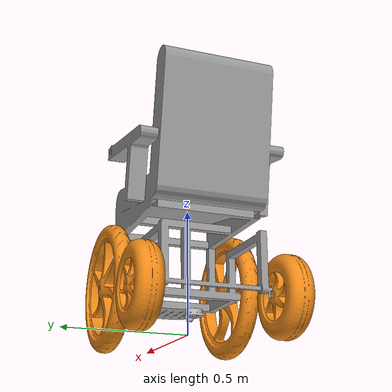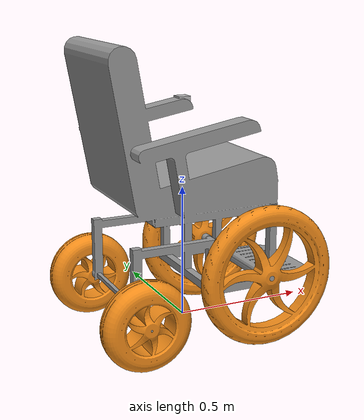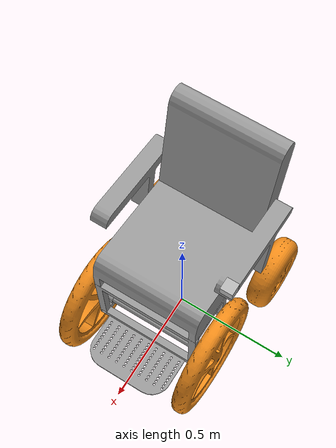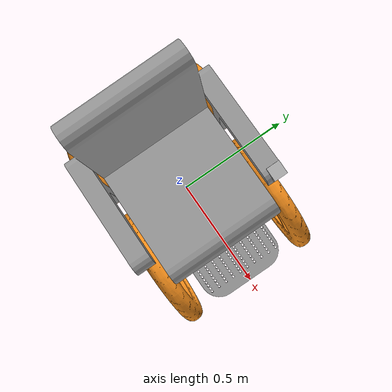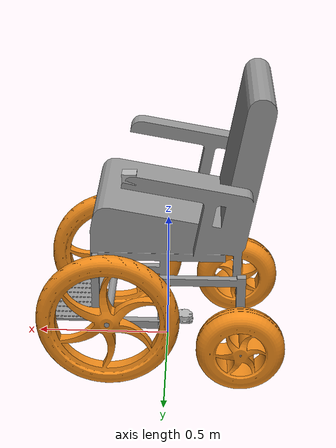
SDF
<?xml version="1.0" encoding="utf-8"?>
<sdf version='1.7'>
  <model name='chairbot'>
    <pose>0 0 0.5 0 0 0</pose>
    <link name='base_link'>
      <pose>0 0 0 0 0 0</pose>
      <inertial>
        <pose>-0.113799 0.000178 0.138094 0 -0 0</pose>
        <mass>54.4806</mass>
        <inertia>
          <ixx>2.37605</ixx>
          <ixy>-0.000504778</ixy>
          <ixz>0.73779</ixz>
          <iyy>2.8287</iyy>
          <iyz>0.000108266</iyz>
          <izz>2.86063</izz>
        </inertia>
      </inertial>
      <collision name='base_link_collision'>
        <pose>0 0 0 0 -0 0</pose>
        <geometry>
          <mesh>
            <scale>1 1 1</scale>
            <uri>model://chair/meshes/base_link.STL</uri>
          </mesh>
        </geometry>
        <surface>
          <friction>
            <ode>
              <mu>0</mu>
              <mu2>0</mu2>
              <fdir1>0 0 0</fdir1>
              <slip1>0</slip1>
              <slip2>0</slip2>
            </ode>
          </friction>
          <bounce>
            <restitution_coefficient>0</restitution_coefficient>
            <threshold>0</threshold>
          </bounce>
          <contact>
            <ode>
              <soft_cfm>0</soft_cfm>
              <soft_erp>0.200000</soft_erp>
              <kp>10000000000000.000000</kp>
              <kd>100000000000.000000</kd>
              <max_vel>-1</max_vel>
              <min_depth>0</min_depth>
            </ode>
          </contact>
        </surface>
      </collision>
      <visual name='base_link_visual'>
        <pose>0 0 0 0 -0 0</pose>
        <geometry>
          <mesh>
            <scale>1 1 1</scale>
            <uri>model://chair/meshes/base_link.STL</uri>
          </mesh>
        </geometry>
        <material>
          <script>
            <uri>model://chair/materials/scripts/chairbot.material</uri>
            <name>chairbot/Grey</name>
          </script>
        </material>
      </visual>
      <gravity>1</gravity>
      <self_collide>0</self_collide>
      <kinematic>0</kinematic>
    </link>
    <joint name='pneu1_joint' type='revolute'>
      <pose relative_to='base_link'>0.21158 -0.3 -0.29144 0 -0 0</pose>
      <parent>base_link</parent>
      <child>pneu1_Link</child>
      <axis>
        <xyz>0 -1 0</xyz>
        <limit>
          <effort>1.0</effort>
        </limit>
        <dynamics>
          <damping>0.1</damping>
          <friction>0</friction>
        </dynamics>
        <use_parent_model_frame>true</use_parent_model_frame>
      </axis>
    </joint>
    <link name='pneu1_Link'>
      <pose relative_to='pneu1_joint'>0 0 0 0 -0 0</pose>
      <inertial>
        <pose>0 0.035001 -0 0 -0 0</pose>
        <mass>3.627</mass>
        <inertia>
          <ixx>0.064382</ixx>
          <ixy>-4.7098e-09</ixy>
          <ixz>3.4414e-07</ixz>
          <iyy>0.12611</iyy>
          <iyz>8.1766e-09</iyz>
          <izz>0.064383</izz>
        </inertia>
      </inertial>
      <collision name='pneu1_Link_collision'>
        <pose>0 0 0 0 -0 0</pose>
        <geometry>
          <mesh>
            <scale>1 1 1</scale>
            <uri>model://chair/meshes/pneu1_Link.STL</uri>
          </mesh>
        </geometry>
        <surface>
          <bounce>
            <restitution_coefficient>0</restitution_coefficient>
            <threshold>0</threshold>
          </bounce>
          <contact>
            <ode>
              <soft_cfm>0</soft_cfm>
              <soft_erp>0.200000</soft_erp>
              <kp>10000000000000.000000</kp>
              <kd>100000000000.000000</kd>
              <max_vel>-1</max_vel>
              <min_depth>0</min_depth>
            </ode>
          </contact>
        </surface>
        <laser_retro>0</laser_retro>
      </collision>
      <visual name='pneu1_Link_visual'>
        <pose>0 0 0 0 -0 0</pose>
        <geometry>
          <mesh>
            <scale>1 1 1</scale>
            <uri>model://chair/meshes/pneu1_Link.STL</uri>
          </mesh>
        </geometry>
        <material>
          <script>
            <uri>model://chair/materials/scripts/chairbot.material</uri>
            <name>chairbot/Orange</name>
          </script>
        </material>
      </visual>
      <gravity>1</gravity>
      <self_collide>0</self_collide>
      <kinematic>0</kinematic>
    </link>

    <joint name='pneu2_joint' type='revolute'>
      <pose relative_to='base_link'>0.21158 0.3 -0.29144 0 -0 0</pose>
      <parent>base_link</parent>
      <child>pneu2_Link</child>
      <axis>
        <xyz>0 1 0</xyz>
        <limit>
          <effort>1.0</effort>
        </limit>
        <dynamics>
          <damping>0.1</damping>
          <friction>0</friction>
        </dynamics>
        <use_parent_model_frame>true</use_parent_model_frame>
      </axis>
    </joint>
    <link name='pneu2_Link'>
      <pose relative_to='pneu2_joint'>0 0 0 0 -0 0</pose>
      <inertial>
        <pose>0 -0.034999 -0 0 -0 0</pose>
        <mass>3.627</mass>
        <inertia>
          <ixx>0.064382</ixx>
          <ixy>-9.2929E-09</ixy>
          <ixz>3.9067E-08</ixz>
          <iyy>0.12611</iyy>
          <iyz>4.584E-09</iyz>
          <izz>0.064383</izz>
        </inertia>
      </inertial>
      <collision name='pneu2_Link_collision'>
        <pose>0 0 0 0 -0 0</pose>
        <geometry>
          <mesh>
            <scale>1 1 1</scale>
            <uri>model://chair/meshes/pneu2_Link.STL</uri>
          </mesh>
        </geometry>
        <surface>
          <bounce>
            <restitution_coefficient>0</restitution_coefficient>
            <threshold>0</threshold>
          </bounce>
          <contact>
            <ode>
              <soft_cfm>0</soft_cfm>
              <soft_erp>0.200000</soft_erp>
              <kp>10000000000000.000000</kp>
              <kd>100000000000.000000</kd>
              <max_vel>-1</max_vel>
              <min_depth>0</min_depth>
            </ode>
          </contact>
        </surface>
        <laser_retro>0</laser_retro>
      </collision>
      <visual name='pneu2_Link_visual'>
        <pose>0 0 0 0 -0 0</pose>
        <geometry>
          <mesh>
            <scale>1 1 1</scale>
            <uri>model://chair/meshes/pneu2_Link.STL</uri>
          </mesh>
        </geometry>
        <material>
          <script>
            <uri>model://chair/materials/scripts/chairbot.material</uri>
            <name>chairbot/Orange</name>
          </script>
        </material>
      </visual>
      <gravity>1</gravity>
      <self_collide>0</self_collide>
      <kinematic>0</kinematic>
    </link>
    <joint name='pneu3_joint' type='revolute'>
      <pose relative_to='base_link'>-0.26967 0.33379 -0.38574 0 -0 0</pose>
      <parent>base_link</parent>
      <child>pneu3_Link</child>
      <axis>
        <xyz>0 1 0</xyz>
        <limit>
          <effort>1.0</effort>
        </limit>
        <dynamics>
          <damping>0.1</damping>
          <friction>0</friction>
        </dynamics>
        <use_parent_model_frame>true</use_parent_model_frame>
      </axis>
    </joint>
    <link name='pneu3_Link'>
      <pose relative_to='pneu3_joint'>0 0 0 0 -0 0</pose>
      <inertial>
        <pose>-0.000333 -0.05 -0.000363 0 -0 0</pose>
        <mass>2.8006</mass>
        <inertia>
          <ixx>0.020147</ixx>
          <ixy>-1.4565e-09</ixy>
          <ixz>7.4949e-07</ixz>
          <iyy>0.034868</iyy>
          <iyz>7.7795e-09</iyz>
          <izz>0.020147</izz>
        </inertia>
      </inertial>
      <collision name='pneu3_Link_collision'>
        <pose>0 0 0 0 -0 0</pose>
        <geometry>
          <mesh>
            <scale>1 1 1</scale>
            <uri>model://chair/meshes/pneu3_Link.STL</uri>
          </mesh>
        </geometry>
        <surface>
          <bounce>
            <restitution_coefficient>0</restitution_coefficient>
            <threshold>0</threshold>
          </bounce>
          <contact>
            <ode>
              <soft_cfm>0</soft_cfm>
              <soft_erp>0.200000</soft_erp>
              <kp>10000000000000.000000</kp>
              <kd>100000000000.000000</kd>
              <max_vel>-1</max_vel>
              <min_depth>0</min_depth>
            </ode>
          </contact>
        </surface>
        <laser_retro>0</laser_retro>
      </collision>
      <visual name='pneu3_Link_visual'>
        <pose>0 0 0 0 -0 0</pose>
        <geometry>
          <mesh>
            <scale>1 1 1</scale>
            <uri>model://chair/meshes/pneu3_Link.STL</uri>
          </mesh>
        </geometry>
        <material>
          <script>
            <uri>model://chair/materials/scripts/chairbot.material</uri>
            <name>chairbot/Orange</name>
          </script>
        </material>
      </visual>
      <gravity>1</gravity>
      <self_collide>0</self_collide>
      <kinematic>0</kinematic>
    </link>

    <joint name='pneu4_joint' type='revolute'>
      <pose relative_to='base_link'>-0.26967 -0.3338 -0.38574 0 -0 0</pose>
      <parent>base_link</parent>
      <child>pneu4_Link</child>
      <axis>
        <xyz>0 1 0</xyz>
        <limit>
          <effort>1.0</effort>
        </limit>
        <dynamics>
          <damping>0.1</damping>
          <friction>0</friction>
        </dynamics>
        <use_parent_model_frame>true</use_parent_model_frame>
      </axis>
    </joint>
    <link name='pneu4_Link'>
      <pose relative_to='pneu4_joint'>0 0 0 0 -0 0</pose>
      <inertial>
        <pose>-0.000333 0.05 -0.000363 0 -0 0</pose>
        <mass>2.8006</mass>
        <inertia>
          <ixx>0.020147</ixx>
          <ixy>-1.4565e-09</ixy>
          <ixz>7.4949e-07</ixz>
          <iyy>0.034868</iyy>
          <iyz>7.7795e-09</iyz>
          <izz>0.020147</izz>
        </inertia>
      </inertial>
      <collision name='pneu4_Link_collision'>
        <pose>0 0 0 0 -0 0</pose>
        <geometry>
          <mesh>
            <scale>1 1 1</scale>
            <uri>model://chair/meshes/pneu4_Link.STL</uri>
          </mesh>
        </geometry>
        <surface>
          <bounce>
            <restitution_coefficient>0</restitution_coefficient>
            <threshold>0</threshold>
          </bounce>
          <contact>
            <ode>
              <soft_cfm>0</soft_cfm>
              <soft_erp>0.200000</soft_erp>
              <kp>10000000000000.000000</kp>
              <kd>100000000000.000000</kd>
              <max_vel>-1</max_vel>
              <min_depth>0</min_depth>
            </ode>
          </contact>
        </surface>
        <laser_retro>0</laser_retro>
      </collision>
      <visual name='pneu4_Link_visual'>
        <pose>0 0 0 0 -0 0</pose>
        <geometry>
          <mesh>
            <scale>1 1 1</scale>
            <uri>model://chair/meshes/pneu4_Link.STL</uri>
          </mesh>
        </geometry>
        <material>
          <script>
            <uri>model://chair/materials/scripts/chairbot.material</uri>
            <name>chairbot/Orange</name>
          </script>
        </material>
      </visual>
      <gravity>1</gravity>
      <self_collide>0</self_collide>
      <kinematic>0</kinematic>
    </link>

    <link name="link">
      <gravity>false</gravity>
      <pose>0.128 0.27 0.27 0 0 0</pose>
      <inertial>
        <mass>0.1</mass>
      </inertial>
      <visual name="visual">
        <geometry>
          <box>
            <size>0.05 0.05 0.05</size>
          </box>
        </geometry>
      </visual>
      <sensor name="camera" type="camera">
        <camera>
          <horizontal_fov>1.047</horizontal_fov>
          <image>
            <width>320</width>
            <height>240</height>
          </image>
          <clip>
            <near>0.1</near>
            <far>100</far>
          </clip>
        </camera>

        <plugin name="camera_driver" filename="libgazebo_ros_camera.so">
        <ros>
        </ros>
        </plugin>
        <output_type>sensor_msgs/camera</output_type>
        <frame_name>base_scan</frame_name>
        <always_on>1</always_on>
        <update_rate>30</update_rate>
        <visualize>true</visualize>
      </sensor>
    </link>

    <joint name='camera' type='fixed'>
      <parent>base_link</parent>
      <child>link</child>
      <axis>
        <xyz>0.128 -0.065 0.104 0 0 0</xyz>
      </axis>
    </joint>

    <link name="base_scan">
    <inertial>
    <pose>0.069 0.27 -0.20 0 0 0</pose>
    <inertia>

    <ixx>0.001</ixx>
    <ixy>0.000</ixy>
    <ixz>0.000</ixz>
    <iyy>0.001</iyy>
    <iyz>0.000</iyz>
    <izz>0.001</izz>
    </inertia>
    <mass>0.114</mass>
    </inertial>

    <collision name="lidar_sensor_collision">
    <pose>-0.052 0 0.111 0 0 0</pose>
    <geometry>
    <cylinder>
    <radius>0.0508</radius>
    <length>0.055</length>
    </cylinder>
    </geometry>
    </collision>

    <visual name="lidar_sensor_visual">
    <pose>-0.064 0 -0.42 0 0 0</pose>
    <geometry>
    <mesh>
    <uri>model://turtlebot3_waffle/meshes/lds.dae</uri>
    <scale>0.001 0.001 0.001</scale>
    </mesh>
    </geometry>
    </visual>

    <sensor name="hls_lfcd_lds" type="ray">
    <always_on>true</always_on>
    <visualize>true</visualize>
    <pose>-0.064 0 -0.42 0 0 0</pose>
    <update_rate>5</update_rate>
    <ray>
    <scan>
    <horizontal>
    <samples>360</samples>
    <resolution>1.000000</resolution>
    <min_angle>0.000000</min_angle>
    <max_angle>6.280000</max_angle>
    </horizontal>
    </scan>
    <range>
    <min>0.60000</min>
    <max>15.0</max>
    <resolution>0.015000</resolution>
    </range>
    <noise>
    <type>gaussian</type>
    <mean>0.0</mean>
    <stddev>0.01</stddev>
    </noise>
    </ray>
    <plugin name="turtlebot3_laserscan" filename="libgazebo_ros_ray_sensor.so">
    <ros>
    <remapping>~/out:=scan</remapping>
    </ros>
    <output_type>sensor_msgs/LaserScan</output_type>
    <frame_name>base_scan</frame_name>
    </plugin>
    </sensor>
    </link>

    <joint name='lidar' type='fixed'>
      <parent>base_link</parent>
      <child>base_scan</child>
      <axis>
        <xyz>0.064 -0.065 -0.41 0 0 0</xyz>
      </axis>
    </joint>

    <plugin name="turtlebot3_diff_drive" filename="libgazebo_ros_diff_drive.so">

        <ros>
          <!--since gazebo_plugins publish tf topic in global namespace /tf only and it
            cannot be remapped like (namespace/tf) through launch arguments -->
          <remapping>/tf:=tf</remapping>
        </ros>

        <update_rate>30</update_rate>

        <!-- wheels -->
        <left_joint>pneu1_joint</left_joint>
        <right_joint>pneu1_joint</right_joint>

        <!-- kinematics -->
        <wheel_separation>0.287</wheel_separation>
        <wheel_diameter>0.066</wheel_diameter>

        <!-- limits -->
        <max_wheel_torque>20</max_wheel_torque>
        <max_wheel_acceleration>1.0</max_wheel_acceleration>

        <command_topic>cmd_vel</command_topic>

        <!-- output -->
        <publish_odom>true</publish_odom>
        <publish_odom_tf>true</publish_odom_tf>
        <publish_wheel_tf>false</publish_wheel_tf>

        <odometry_topic>odom</odometry_topic>
        <odometry_frame>odom</odometry_frame>
        <robot_base_frame>base_link</robot_base_frame>

    </plugin>

    <plugin name="turtlebot3_joint_state" filename="libgazebo_ros_joint_state_publisher.so">
        <ros>
          <remapping>~/out:=joint_states</remapping>
        </ros>
        <update_rate>30</update_rate>
        <joint_name>pneu1_joint</joint_name>
        <joint_name>pneu1_joint</joint_name>
    </plugin>

  </model>
</sdf>
